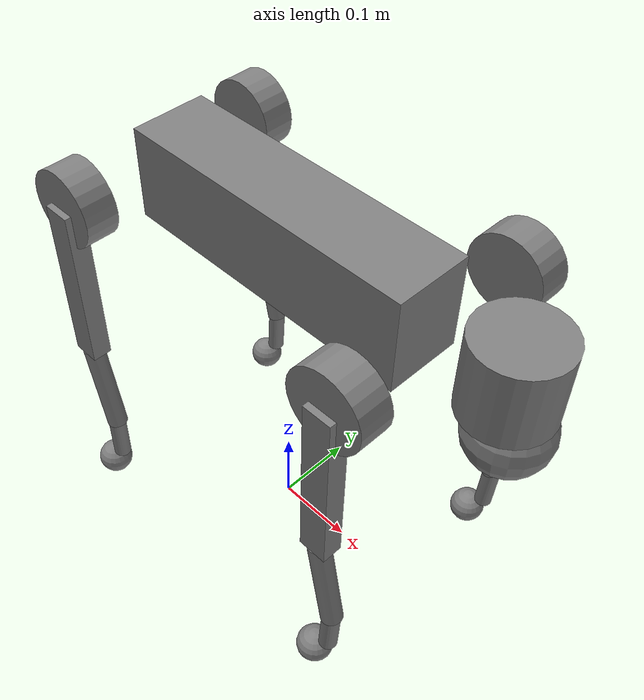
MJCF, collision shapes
<mujoco model="go2 feet only">
  <!-- Compiler: adjust meshdir to point to the Go2 asset directory -->
  <compiler angle="radian" meshdir="../../../../../mujoco_menagerie/unitree_go2/assets" autolimits="true" />

  <!-- Option: using Go2 defaults -->
  <option cone="elliptic" impratio="100" timestep="0.004" integrator="Euler" />

  <default>
    <default class="go2">
      <!-- Global visual and physics defaults -->
      <geom friction="0.4" margin="0.001" condim="1"/>
      <joint axis="0 1 0" damping="0.1" armature="0.01" frictionloss="0.2"/>
      <motor ctrlrange="-23.7 23.7"/>
      <default class="abduction">
        <joint axis="1 0 0" range="-1.0472 1.0472" />
      </default>
      <default class="hip">
        <default class="front_hip">
          <joint range="-1.5708 3.4907" />
        </default>
        <default class="back_hip">
          <joint range="-0.5236 4.5379" />
        </default>
      </default>
      <default class="knee">
        <joint range="-2.7227 -0.83776" />
        <motor ctrlrange="-45.43 45.43"/>
      </default>
      <default class="visual">
        <geom type="mesh" contype="0" conaffinity="0" group="2"/>
      </default>
      <default class="collision">
        <geom group="3"/>
        <default class="foot">
          <!-- Enable collisions for feet only -->
          <geom type="sphere" size="0.022" pos="-0.002 0 -0.213" priority="1" condim="6"
                friction="0.4 0.02 0.01"/>
        </default>
      </default>
    </default>
  </default>

  <asset>
    <!-- Update material names as needed -->
    <material name="metal" rgba=".9 .95 .95 1" />
    <material name="black" rgba="0 0 0 1" />
    <material name="white" rgba="1 1 1 1" />
    <material name="gray" rgba="0.671705 0.692426 0.774270 1" />
    <!-- Use Go2 meshes -->
    <mesh file="base_0.obj" />
    <mesh file="base_1.obj" />
    <mesh file="base_2.obj" />
    <mesh file="base_3.obj" />
    <mesh file="base_4.obj" />
    <mesh file="hip_0.obj" />
    <mesh file="hip_1.obj" />
    <mesh file="thigh_0.obj" />
    <mesh file="thigh_1.obj" />
    <mesh file="thigh_mirror_0.obj" />
    <mesh file="thigh_mirror_1.obj" />
    <mesh file="calf_0.obj" />
    <mesh file="calf_1.obj" />
    <mesh file="calf_mirror_0.obj" />
    <mesh file="calf_mirror_1.obj" />
    <mesh file="foot.obj" />
  </asset>

  <worldbody>
    <!-- Base body (trunk/base_link) -->
    <body name="base_link" pos="0 0 0.445" childclass="go2">
      <inertial pos="0.021112 0 -0.005366" quat="-0.000543471 0.713435 -0.00173769 0.700719"
                mass="6.921"
                diaginertia="0.107027 0.0980771 0.0244531" />
      <freejoint />
      <!-- Visual geoms from Go2 asset -->
      <geom mesh="base_0" material="black" class="visual" />
      <geom mesh="base_1" material="black" class="visual" />
      <geom mesh="base_2" material="black" class="visual" />
      <geom mesh="base_3" material="white" class="visual" />
      <geom mesh="base_4" material="gray" class="visual" />
      <!-- Collision geoms -->
      <geom size="0.1881 0.04675 0.057" type="box" class="collision" />
      <geom size="0.05 0.045" pos="0.285 0 0.01" type="cylinder" class="collision" />
      <geom size="0.047" pos="0.293 0 -0.06" class="collision" />
      <!-- IMU site -->
      <site name="imu" pos="-0.02557 0 0.04232" />

      <!-- Left Front Leg -->
      <body name="FL_hip" pos="0.1934 0.0465 0">
        <inertial pos="-0.0054 0.00194 -0.000105" quat="0.497014 0.499245 0.505462 0.498237"
                  mass="0.678"
                  diaginertia="0.00088403 0.000596003 0.000479967" />
        <joint name="FL_hip_joint" class="abduction" />
        <geom mesh="hip_0" material="metal" class="visual" />
        <geom mesh="hip_1" material="gray" class="visual" />
        <!-- Collision for hip -->
        <geom size="0.046 0.02" pos="0 0.08 0" quat="1 1 0 0" type="cylinder" class="collision" />
        <body name="FL_thigh" pos="0 0.0955 0">
          <inertial pos="-0.00374 -0.0223 -0.0327" quat="0.829533 0.0847635 -0.0200632 0.551623"
                    mass="1.152"
                    diaginertia="0.00594973 0.00584149 0.000878787" />
          <joint name="FL_thigh_joint" class="front_hip" />
          <geom mesh="thigh_0" material="metal" class="visual" />
          <geom mesh="thigh_1" material="gray" class="visual" />
          <geom size="0.1065 0.01225 0.017" pos="0 0 -0.1065" quat="0.707107 0 0.707107 0"
                type="box" class="collision" />
          <body name="FL_calf" pos="0 0 -0.213">
            <inertial pos="0.00629595 -0.000622121 -0.141417"
                      quat="0.710672 0.00154099 -0.00450087 0.703508"
                      mass="0.241352"
                      diaginertia="0.0014901 0.00146356 5.31397e-05" />
            <joint name="FL_calf_joint" class="knee" />
            <geom mesh="calf_0" material="gray" class="visual" />
            <geom mesh="calf_1" material="black" class="visual" />
            <geom size="0.012 0.06" pos="0.008 0 -0.06" quat="0.994493 0 -0.104807 0"
                  type="cylinder" class="collision" />
            <geom size="0.011 0.0325" pos="0.02 0 -0.148" quat="0.999688 0 0.0249974 0"
                  type="cylinder" class="collision" />
            <geom pos="0 0 -0.213" mesh="foot" class="visual" material="black" />
            <!-- Collision foot: note the use of the default collision settings for foot -->
            <geom name="FL" class="foot" />
            <body name="FL_foot" pos="0 0 -0.213" />
          </body>
        </body>
      </body>

      <!-- Right Front Leg -->
      <body name="FR_hip" pos="0.1934 -0.0465 0">
        <inertial pos="-0.0054 -0.00194 -0.000105" quat="0.498237 0.505462 0.499245 0.497014"
                  mass="0.678"
                  diaginertia="0.00088403 0.000596003 0.000479967" />
        <joint name="FR_hip_joint" class="abduction" />
        <geom mesh="hip_0" material="metal" class="visual" quat="4.63268e-05 1 0 0" />
        <geom mesh="hip_1" material="gray" class="visual" quat="4.63268e-05 1 0 0" />
        <geom size="0.046 0.02" pos="0 -0.08 0" quat="0.707107 0.707107 0 0"
              type="cylinder" class="collision" />
        <body name="FR_thigh" pos="0 -0.0955 0">
          <inertial pos="-0.00374 0.0223 -0.0327" quat="0.551623 -0.0200632 0.0847635 0.829533"
                    mass="1.152"
                    diaginertia="0.00594973 0.00584149 0.000878787" />
          <joint name="FR_thigh_joint" class="front_hip" />
          <geom mesh="thigh_mirror_0" material="metal" class="visual" />
          <geom mesh="thigh_mirror_1" material="gray" class="visual" />
          <geom size="0.1065 0.01225 0.017" pos="0 0 -0.1065" quat="0.707107 0 0.707107 0"
                type="box" class="collision" />
          <body name="FR_calf" pos="0 0 -0.213">
            <inertial pos="0.00629595 0.000622121 -0.141417"
                      quat="0.703508 -0.00450087 0.00154099 0.710672"
                      mass="0.241352"
                      diaginertia="0.0014901 0.00146356 5.31397e-05" />
            <joint name="FR_calf_joint" class="knee" />
            <geom mesh="calf_mirror_0" material="gray" class="visual" />
            <geom mesh="calf_mirror_1" material="black" class="visual" />
            <geom size="0.013 0.06" pos="0.01 0 -0.06" quat="0.995004 0 -0.0998334 0"
                  type="cylinder" class="collision" />
            <geom size="0.011 0.0325" pos="0.02 0 -0.148" quat="0.999688 0 0.0249974 0"
                  type="cylinder" class="collision" />
            <geom pos="0 0 -0.213" mesh="foot" class="visual" material="black" />
            <geom name="FR" class="foot" />
            <body name="FR_foot" pos="0 0 -0.213" />
          </body>
        </body>
      </body>

      <!-- Left Rear Leg -->
      <body name="RL_hip" pos="-0.1934 0.0465 0">
        <inertial pos="0.0054 -0.00194 -0.000105" quat="0.514169 0.507341 0.482891 0.495027"
                  mass="0.678"
                  diaginertia="0.00088403 0.000596003 0.000479967" />
        <joint name="RL_hip_joint" class="abduction" />
        <geom mesh="hip_0" material="metal" class="visual" quat="4.63268e-05 0 1 0" />
        <geom mesh="hip_1" material="gray" class="visual" quat="4.63268e-05 0 1 0" />
        <geom size="0.046 0.02" pos="0 0.08 0" quat="0.707107 0.707107 0 0"
              type="cylinder" class="collision" />
        <body name="RL_thigh" pos="0 0.0955 0">
          <inertial pos="-0.00374 -0.0223 -0.0327" quat="0.829533 0.0847635 -0.0200632 0.551623"
                    mass="1.152"
                    diaginertia="0.00594973 0.00584149 0.000878787" />
          <joint name="RL_thigh_joint" class="back_hip" />
          <geom mesh="thigh_0" material="metal" class="visual" />
          <geom mesh="thigh_1" material="gray" class="visual" />
          <geom size="0.1065 0.01225 0.017" pos="0 0 -0.1065" quat="0.707107 0 0.707107 0"
                type="box" class="collision" />
          <body name="RL_calf" pos="0 0 -0.213">
            <inertial pos="0.00629595 0.000622121 -0.141417"
                      quat="0.710672 0.00154099 -0.00450087 0.703508"
                      mass="0.241352"
                      diaginertia="0.0014901 0.00146356 5.31397e-05" />
            <joint name="RL_calf_joint" class="knee" />
            <geom mesh="calf_0" material="gray" class="visual" />
            <geom mesh="calf_1" material="black" class="visual" />
            <geom size="0.013 0.06" pos="0.01 0 -0.06" quat="0.995004 0 -0.0998334 0"
                  type="cylinder" class="collision" />
            <geom size="0.011 0.0325" pos="0.02 0 -0.148" quat="0.999688 0 0.0249974 0"
                  type="cylinder" class="collision" />
            <geom pos="0 0 -0.213" mesh="foot" class="visual" material="black" />
            <geom name="RL" class="foot" />
            <body name="RL_foot" pos="0 0 -0.213" />
          </body>
        </body>
      </body>

      <!-- Right Rear Leg -->
      <body name="RR_hip" pos="-0.1934 -0.0465 0">
        <inertial pos="0.0054 -0.00194 -0.000105" quat="0.499245 0.497014 0.498237 0.505462"
                  mass="0.678"
                  diaginertia="0.00088403 0.000596003 0.000479967" />
        <joint name="RR_hip_joint" class="abduction" />
        <geom mesh="hip_0" material="metal" class="visual"
              quat="2.14617e-09 4.63268e-05 4.63268e-05 -1" />
        <geom mesh="hip_1" material="gray" class="visual"
              quat="2.14617e-09 4.63268e-05 4.63268e-05 -1" />
        <geom size="0.046 0.02" pos="0 -0.08 0" quat="0.707107 0.707107 0 0"
              type="cylinder" class="collision" />
        <body name="RR_thigh" pos="0 -0.0955 0">
          <inertial pos="-0.00374 0.0223 -0.0327" quat="0.551623 -0.0200632 0.0847635 0.829533"
                    mass="1.152"
                    diaginertia="0.00594973 0.00584149 0.000878787" />
          <joint name="RR_thigh_joint" class="back_hip" />
          <geom mesh="thigh_mirror_0" material="metal" class="visual" />
          <geom mesh="thigh_mirror_1" material="gray" class="visual" />
          <geom size="0.1065 0.01225 0.017" pos="0 0 -0.1065" quat="0.707107 0 0.707107 0"
                type="box" class="collision" />
          <body name="RR_calf" pos="0 0 -0.213">
            <inertial pos="0.00629595 0.000622121 -0.141417"
                      quat="0.703508 -0.00450087 0.00154099 0.710672"
                      mass="0.241352"
                      diaginertia="0.0014901 0.00146356 5.31397e-05" />
            <joint name="RR_calf_joint" class="knee" />
            <geom mesh="calf_mirror_0" material="gray" class="visual" />
            <geom mesh="calf_mirror_1" material="black" class="visual" />
            <geom size="0.013 0.06" pos="0.01 0 -0.06" quat="0.995004 0 -0.0998334 0"
                  type="cylinder" class="collision" />
            <geom size="0.011 0.0325" pos="0.02 0 -0.148" quat="0.999688 0 0 0.0249974"
                  type="cylinder" class="collision" />
            <geom pos="0 0 -0.213" mesh="foot" class="visual" material="black" />
            <geom name="RR" class="foot" />
            <body name="RR_foot" pos="0 0 -0.213" />
          </body>
        </body>
      </body>
    </body>
  </worldbody>

  <actuator>
    <motor class="abduction" name="FR_hip" joint="FR_hip_joint" />
    <motor class="hip" name="FR_thigh" joint="FR_thigh_joint" />
    <motor class="knee" name="FR_calf" joint="FR_calf_joint" />
    <motor class="abduction" name="FL_hip" joint="FL_hip_joint" />
    <motor class="hip" name="FL_thigh" joint="FL_thigh_joint" />
    <motor class="knee" name="FL_calf" joint="FL_calf_joint" />
    <motor class="abduction" name="RR_hip" joint="RR_hip_joint" />
    <motor class="hip" name="RR_thigh" joint="RR_thigh_joint" />
    <motor class="knee" name="RR_calf" joint="RR_calf_joint" />
    <motor class="abduction" name="RL_hip" joint="RL_hip_joint" />
    <motor class="hip" name="RL_thigh" joint="RL_thigh_joint" />
    <motor class="knee" name="RL_calf" joint="RL_calf_joint" />
  </actuator>

  <sensor>
    <!-- Joint positions -->
    <jointpos name="FR_hip_pos" joint="FR_hip_joint" />
    <jointpos name="FR_thigh_pos" joint="FR_thigh_joint" />
    <jointpos name="FR_calf_pos" joint="FR_calf_joint" />
    <jointpos name="FL_hip_pos" joint="FL_hip_joint" />
    <jointpos name="FL_thigh_pos" joint="FL_thigh_joint" />
    <jointpos name="FL_calf_pos" joint="FL_calf_joint" />
    <jointpos name="RR_hip_pos" joint="RR_hip_joint" />
    <jointpos name="RR_thigh_pos" joint="RR_thigh_joint" />
    <jointpos name="RR_calf_pos" joint="RR_calf_joint" />
    <jointpos name="RL_hip_pos" joint="RL_hip_joint" />
    <jointpos name="RL_thigh_pos" joint="RL_thigh_joint" />
    <jointpos name="RL_calf_pos" joint="RL_calf_joint" />

    <!-- Joint velocities -->
    <jointvel name="FR_hip_vel" joint="FR_hip_joint" />
    <jointvel name="FR_thigh_vel" joint="FR_thigh_joint" />
    <jointvel name="FR_calf_vel" joint="FR_calf_joint" />
    <jointvel name="FL_hip_vel" joint="FL_hip_joint" />
    <jointvel name="FL_thigh_vel" joint="FL_thigh_joint" />
    <jointvel name="FL_calf_vel" joint="FL_calf_joint" />
    <jointvel name="RR_hip_vel" joint="RR_hip_joint" />
    <jointvel name="RR_thigh_vel" joint="RR_thigh_joint" />
    <jointvel name="RR_calf_vel" joint="RR_calf_joint" />
    <jointvel name="RL_hip_vel" joint="RL_hip_joint" />
    <jointvel name="RL_thigh_vel" joint="RL_thigh_joint" />
    <jointvel name="RL_calf_vel" joint="RL_calf_joint" />

    <!-- Joint actuator torques -->
    <jointactuatorfrc name="FR_hip_torque" joint="FR_hip_joint" noise="0.01" />
    <jointactuatorfrc name="FR_thigh_torque" joint="FR_thigh_joint" noise="0.01" />
    <jointactuatorfrc name="FR_calf_torque" joint="FR_calf_joint" noise="0.01" />
    <jointactuatorfrc name="FL_hip_torque" joint="FL_hip_joint" noise="0.01" />
    <jointactuatorfrc name="FL_thigh_torque" joint="FL_thigh_joint" noise="0.01" />
    <jointactuatorfrc name="FL_calf_torque" joint="FL_calf_joint" noise="0.01" />
    <jointactuatorfrc name="RR_hip_torque" joint="RR_hip_joint" noise="0.01" />
    <jointactuatorfrc name="RR_thigh_torque" joint="RR_thigh_joint" noise="0.01" />
    <jointactuatorfrc name="RR_calf_torque" joint="RR_calf_joint" noise="0.01" />
    <jointactuatorfrc name="RL_hip_torque" joint="RL_hip_joint" noise="0.01" />
    <jointactuatorfrc name="RL_thigh_torque" joint="RL_thigh_joint" noise="0.01" />
    <jointactuatorfrc name="RL_calf_torque" joint="RL_calf_joint" noise="0.01" />

    <!-- IMU sensors -->
    <framequat name="imu_quat" objtype="site" objname="imu" />
    <gyro name="imu_gyro" site="imu" />
    <accelerometer name="imu_acc" site="imu" />
    <framepos name="frame_pos" objtype="site" objname="imu" />
    <framelinvel name="frame_vel" objtype="site" objname="imu" />
  </sensor>

  <!-- (Optional) Keyframes for initialization -->

</mujoco>
